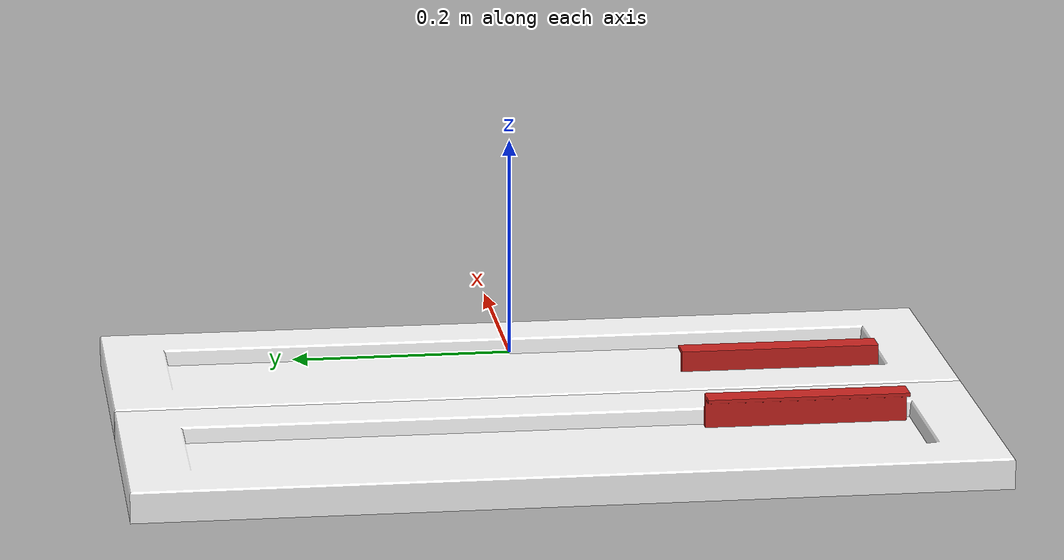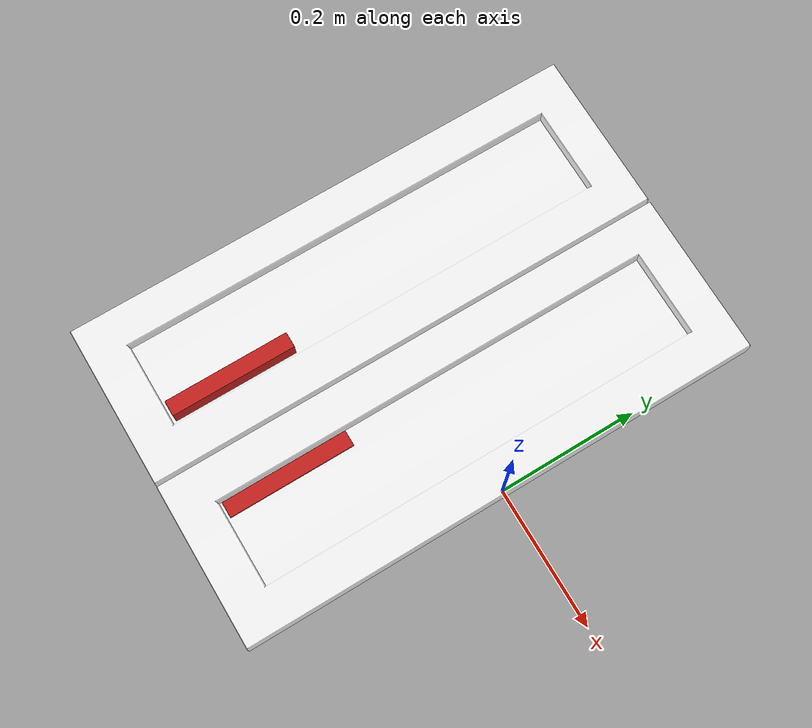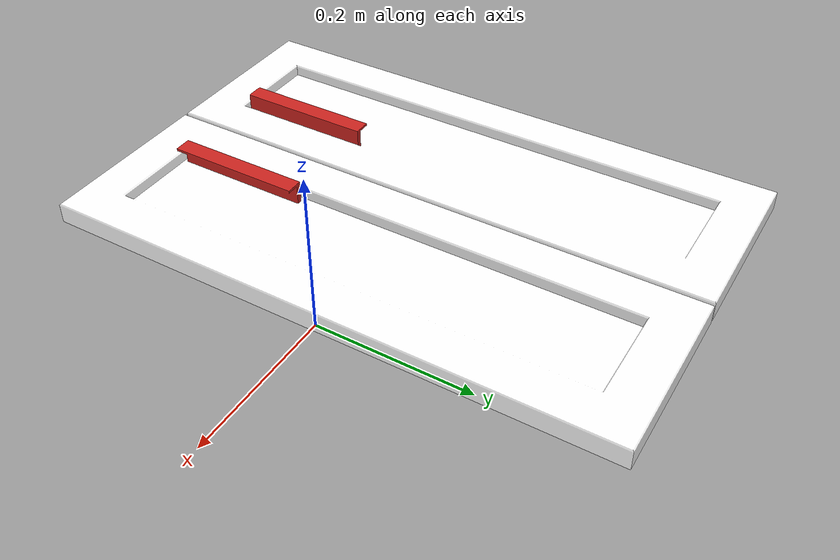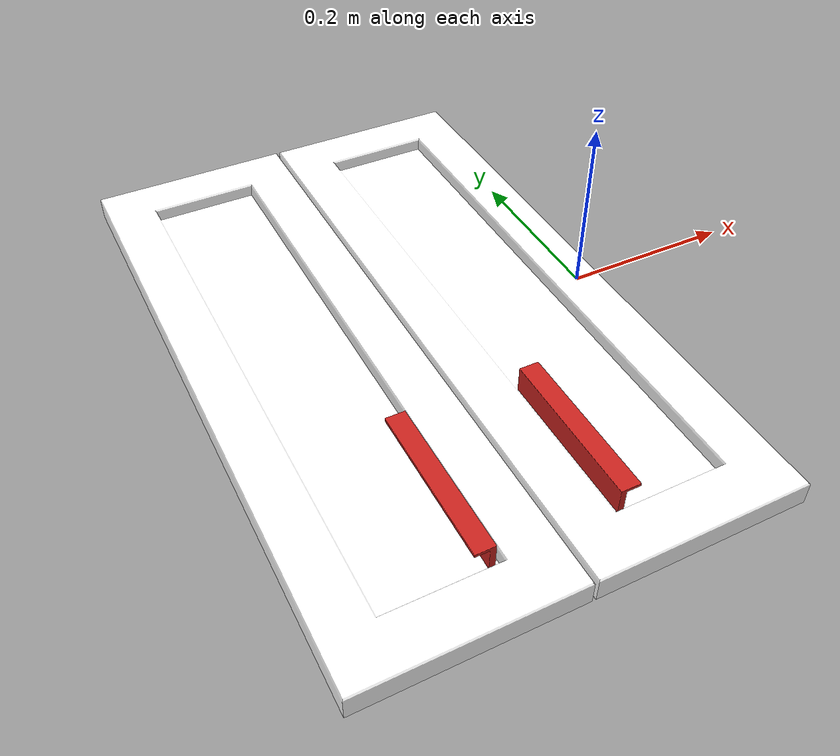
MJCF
<mujoco model="Cabinet_b69a8cbf">
  <compiler autolimits="true" boundmass="0.01" angle="radian"/>
  <default>
    <default class="/">
      <default class="__VISUAL_MJT__">
        <geom contype="0" conaffinity="0" group="0"/>
      </default>
      <default class="__STRUCTURAL_MJT__">
        <geom contype="8" conaffinity="15" group="4" friction="0.90000000000000002 0.90000000000000002 0.001" solref="0.025000000000000001 1" solimp="0.998 0.998 0.001"/>
      </default>
      <default class="__DYNAMIC_MJT__">
        <geom contype="1" conaffinity="15" group="4" friction="0.90000000000000002 0.90000000000000002 0.001" solref="0.025000000000000001 1" solimp="0.998 0.998 0.001"/>
      </default>
    </default>
  </default>
  <asset>
    <material name="material_WhiteWoodClean" class="/" specular="0.5" shininess="0.5" rgba="1 1 1 1"/>
    <mesh name="Cabinet_b69a8cbf_Mesh_01_c2cd6e86" class="/" file="Cabinet_b69a8cbf_Mesh_01_c2cd6e86/Cabinet_b69a8cbf_Mesh_01_c2cd6e86.obj" scale="1 1 1" inertia="legacy"/>
    <texture name="HammeredMetal_AlbedoTransparency_2" type="2d" file="HammeredMetal_AlbedoTransparency.png"/>
    <material name="material_HammeredMetal_AlbedoTransparency_2" class="/" texture="HammeredMetal_AlbedoTransparency_2" specular="0.5" shininess="0.5" rgba="1 0.93407709999999999 0.81617649999999997 1"/>
    <mesh name="Cabinet_b69a8cbf_handle_3_178mm_1_2041f9da" class="/" file="Cabinet_b69a8cbf_handle_3_178mm_1_2041f9da/Cabinet_b69a8cbf_handle_3_178mm_1_2041f9da.obj" scale="1 1 1" inertia="legacy"/>
    <mesh name="Cabinet_b69a8cbf_Mesh_02_4d1b6638" class="/" file="Cabinet_b69a8cbf_Mesh_02_4d1b6638/Cabinet_b69a8cbf_Mesh_02_4d1b6638.obj" scale="1 1 1" inertia="legacy"/>
    <mesh name="Cabinet_b69a8cbf_handle_3_178mm_02_2739a1f2" class="/" file="Cabinet_b69a8cbf_handle_3_178mm_02_2739a1f2/Cabinet_b69a8cbf_handle_3_178mm_02_2739a1f2.obj" scale="1 1 1" inertia="legacy"/>
  </asset>
  <worldbody>
    <body name="Cabinet_b69a8cbf">
      <body name="Cabinet_b69a8cbf_Mesh_01_c2cd6e86" pos="0.0030000209808349609 0 0" quat="1 0 0 0">
        <geom name="Cabinet_b69a8cbf_Mesh_01_c2cd6e86" class="__VISUAL_MJT__" type="mesh" material="material_WhiteWoodClean" mesh="Cabinet_b69a8cbf_Mesh_01_c2cd6e86"/>
        <joint name="Cabinet_b69a8cbf_joint" class="/" type="hinge" pos="2.0954757928848267e-08 0 0" axis="0 -1 0" stiffness="0" range="-1.3962634015954636 0" damping="0.10000000000000001" frictionloss="0"/>
        <geom name="Cabinet_b69a8cbf_Mesh_01_c2cd6e86_PrimitiveCollider_0" class="__DYNAMIC_MJT__" type="box" size="0.11750037223100662 0.3750002384185791 0.013550042174756527" rgba="0 1 0 1" pos="-0.11250007152557373 -2.384185791015625e-07 0.013532638549804688" quat="0 1 0 0"/>
        <body name="Cabinet_b69a8cbf_handle_3_178mm_1_2041f9da" pos="-0.16300003230571747 -0.22420001029968262 0.0099999904632568359" quat="0.70710678118654757 0 0 -0.70710678118654746">
          <geom name="Cabinet_b69a8cbf_handle_3_178mm_1_2041f9da" class="__VISUAL_MJT__" type="mesh" material="material_HammeredMetal_AlbedoTransparency_2" mesh="Cabinet_b69a8cbf_handle_3_178mm_1_2041f9da"/>
          <geom name="Cabinet_b69a8cbf_handle_3_178mm_1_2041f9da_PrimitiveCollider_0" class="__DYNAMIC_MJT__" type="box" size="0.088752105832099915 0.0035549125168472528 0.016431529074907303" rgba="0 1 0 1" pos="-1.3731445980269541e-09 8.2388389444076893e-09 0.016289949417114258" quat="0 1 0 0"/>
          <geom name="Cabinet_b69a8cbf_handle_3_178mm_1_2041f9da_PrimitiveCollider_1" class="__DYNAMIC_MJT__" type="box" size="0.088752105832099915 0.0077598155476152897 0.0019227256998419762" rgba="0 1 0 1" pos="-1.7394139462112435e-08 0.01128496415913105 0.030798906460404396" quat="0 1 0 0"/>
        </body>
      </body>
      <body name="Cabinet_b69a8cbf_Mesh_02_4d1b6638" pos="-0.46100002527236938 0 0" quat="1 0 0 0">
        <geom name="Cabinet_b69a8cbf_Mesh_02_4d1b6638" class="__VISUAL_MJT__" type="mesh" material="material_WhiteWoodClean" mesh="Cabinet_b69a8cbf_Mesh_02_4d1b6638"/>
        <joint name="Cabinet_b69a8cbf_Mesh_02_4d1b6638__1" class="/" type="hinge" pos="-2.9802322387695312e-08 0 0" axis="0 -1 0" stiffness="0" range="0 1.5707963267948966" damping="0.10000000000000001" frictionloss="0"/>
        <geom name="Cabinet_b69a8cbf_Mesh_02_4d1b6638_PrimitiveCollider_0" class="__DYNAMIC_MJT__" type="box" size="0.11750035732984543 0.37500020861625671 0.013550043106079102" rgba="0 1 0 1" pos="0.11249995231628418 0 0.013550043106079102" quat="0 1 0 0"/>
        <body name="Cabinet_b69a8cbf_handle_3_178mm_02_2739a1f2" pos="0.16510006785392761 -0.22399997711181641 0.0099999904632568359" quat="0.70710678118654757 0 0 0.70710678118654746">
          <geom name="Cabinet_b69a8cbf_handle_3_178mm_02_2739a1f2" class="__VISUAL_MJT__" type="mesh" material="material_HammeredMetal_AlbedoTransparency_2" mesh="Cabinet_b69a8cbf_handle_3_178mm_02_2739a1f2"/>
          <geom name="Cabinet_b69a8cbf_handle_3_178mm_02_2739a1f2_PrimitiveCollider_0" class="__DYNAMIC_MJT__" type="box" size="0.088752083480358124 0.0035549115855246782 0.016431529074907303" rgba="0 1 0 1" pos="1.3731288328600044e-09 1.1097044705365988e-07 0.016289949417114258" quat="0 1 0 0"/>
          <geom name="Cabinet_b69a8cbf_handle_3_178mm_02_2739a1f2_PrimitiveCollider_1" class="__DYNAMIC_MJT__" type="box" size="0.088752083480358124 0.0077598136849701405 0.0019227256998419762" rgba="0 1 0 1" pos="1.9235051329502539e-09 0.011285050772130489 0.030798917636275291" quat="0 1 0 0"/>
        </body>
      </body>
    </body>
  </worldbody>
  <contact>
    <exclude name="//unnamed_contact_0" body1="Cabinet_b69a8cbf_Mesh_01_c2cd6e86" body2="Cabinet_b69a8cbf_handle_3_178mm_1_2041f9da"/>
    <exclude name="//unnamed_contact_1" body1="Cabinet_b69a8cbf_Mesh_02_4d1b6638" body2="Cabinet_b69a8cbf_handle_3_178mm_1_2041f9da"/>
  </contact>
</mujoco>
